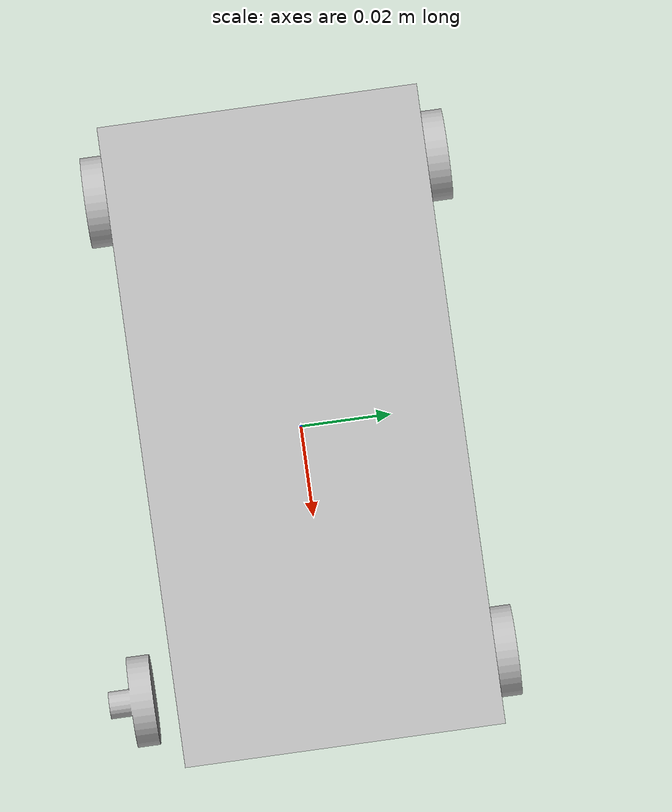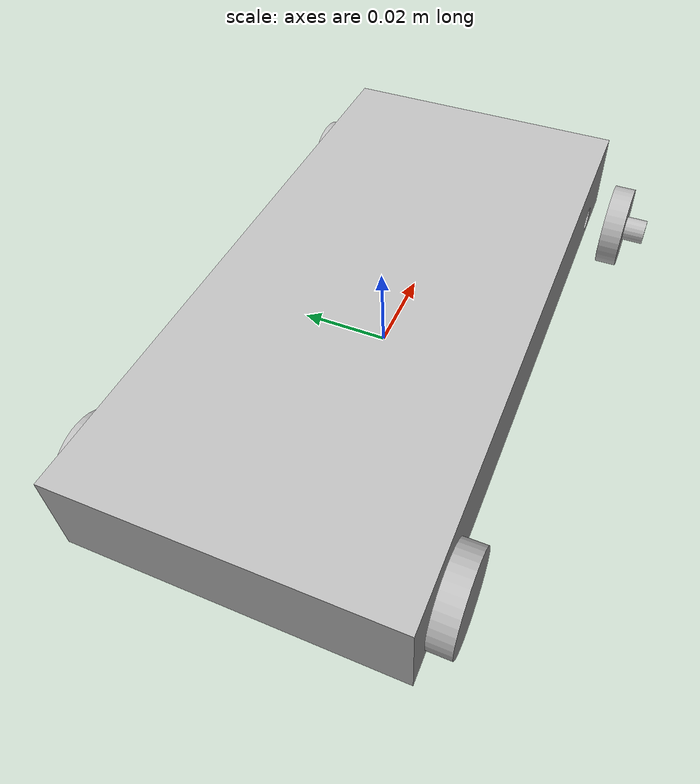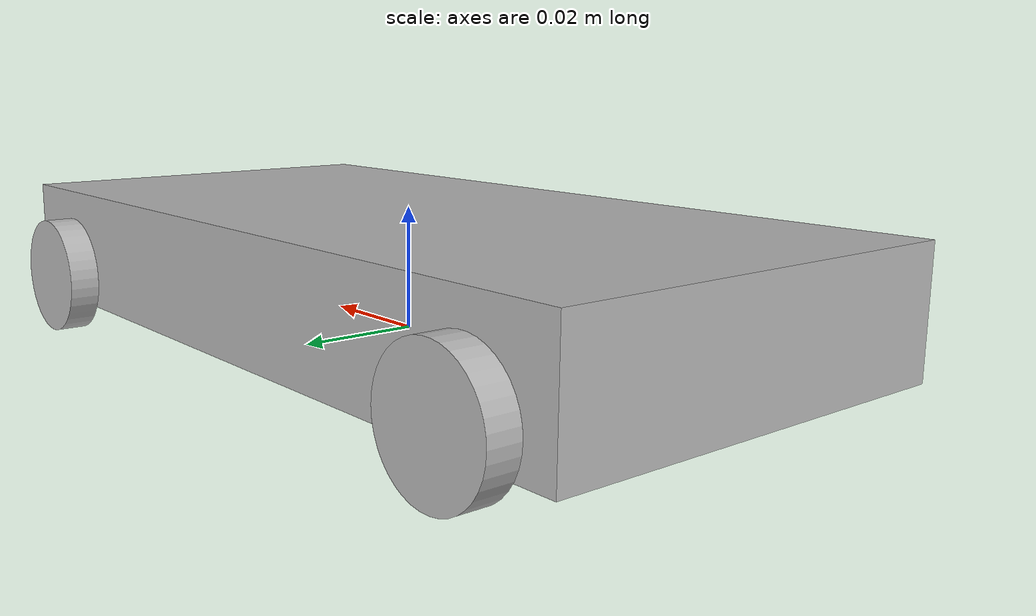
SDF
<sdf version='1.6'>
  <model name='simple_car'>
    <link name='base_link'>
      <pose frame=''>0 0 0 0 -0 0</pose>
      <inertial>
        <pose frame=''>0 -0 0.010103 0 -0 0</pose>
        <mass>0.19204</mass>
        <inertia>
          <ixx>8.484e-05</ixx>
          <ixy>1.781e-20</ixy>
          <ixz>-5.8812e-21</ixz>
          <iyy>0.00031457</iyy>
          <iyz>-7.5483e-19</iyz>
          <izz>0.00038657</izz>
        </inertia>
      </inertial>
      <collision name='base_link_collision'>
        <pose frame=''>0 0 0 0 -0 0</pose>
        <geometry>
          <mesh>
            <scale>1 1 1</scale>
            <uri>model://simple_car/meshes/base_link.STL</uri>
          </mesh>
        </geometry>
      </collision>
      <visual name='base_link_visual'>
        <pose frame=''>0 0 0 0 -0 0</pose>
        <geometry>
          <mesh>
            <scale>1 1 1</scale>
            <uri>model://simple_car/meshes/base_link.STL</uri>
          </mesh>
        </geometry>
      </visual>
    </link>
    <link name='left_front_wheel'>
      <pose frame=''>0.055 0.04 0.005 -1.5708 0 0</pose>
      <inertial>
        <pose frame=''>-0 -0 -0.002913 0 -0 0</pose>
        <mass>0.0017122</mass>
        <inertia>
          <ixx>4.6397e-08</ixx>
          <ixy>7.122e-26</ixy>
          <ixz>-5.1078e-24</ixz>
          <iyy>4.6397e-08</iyy>
          <iyz>5.7964e-25</iyz>
          <izz>7.9176e-08</izz>
        </inertia>
      </inertial>
      <collision name='left_front_wheel_collision'>
        <pose frame=''>0 0 0 0 -0 0</pose>
        <geometry>
          <mesh>
            <scale>1 1 1</scale>
            <uri>model://simple_car/meshes/left_front_wheel.STL</uri>
          </mesh>
        </geometry>
      </collision>
      <visual name='left_front_wheel_visual'>
        <pose frame=''>0 0 0 0 -0 0</pose>
        <geometry>
          <mesh>
            <scale>1 1 1</scale>
            <uri>model://simple_car/meshes/left_front_wheel.STL</uri>
          </mesh>
        </geometry>
      </visual>
    </link>
    <joint name='left_front_joint' type='revolute'>
      <child>left_front_wheel</child>
      <parent>base_link</parent>
      <axis>
        <xyz>0 1 -4e-06</xyz>
        <limit>
          <lower>-1e+16</lower>
          <upper>1e+16</upper>
        </limit>
        <dynamics>
          <spring_reference>0</spring_reference>
          <spring_stiffness>0</spring_stiffness>
        </dynamics>
        <use_parent_model_frame>1</use_parent_model_frame>
      </axis>
    </joint>
    <link name='left_rear_wheel'>
      <pose frame=''>-0.055 0.04 0.005 -1.5708 0 0</pose>
      <inertial>
        <pose frame=''>0 0 -0.002913 0 -0 0</pose>
        <mass>0.0017122</mass>
        <inertia>
          <ixx>4.6397e-08</ixx>
          <ixy>-1.4364e-38</ixy>
          <ixz>-1.1502e-24</ixz>
          <iyy>4.6397e-08</iyy>
          <iyz>-4.2867e-25</iyz>
          <izz>7.9176e-08</izz>
        </inertia>
      </inertial>
      <collision name='left_rear_wheel_collision'>
        <pose frame=''>0 0 0 0 -0 0</pose>
        <geometry>
          <mesh>
            <scale>1 1 1</scale>
            <uri>model://simple_car/meshes/left_rear_wheel.STL</uri>
          </mesh>
        </geometry>
      </collision>
      <visual name='left_rear_wheel_visual'>
        <pose frame=''>0 0 0 0 -0 0</pose>
        <geometry>
          <mesh>
            <scale>1 1 1</scale>
            <uri>model://simple_car/meshes/left_rear_wheel.STL</uri>
          </mesh>
        </geometry>
      </visual>
    </link>
    <joint name='left_rear_joint' type='revolute'>
      <child>left_rear_wheel</child>
      <parent>base_link</parent>
      <axis>
        <xyz>0 1 -4e-06</xyz>
        <limit>
          <lower>-1e+16</lower>
          <upper>1e+16</upper>
        </limit>
        <dynamics>
          <spring_reference>0</spring_reference>
          <spring_stiffness>0</spring_stiffness>
        </dynamics>
        <use_parent_model_frame>1</use_parent_model_frame>
      </axis>
    </joint>
    <link name='right_front_wheel'>
      <pose frame=''>0.055 -0.04 0.005 -1.5708 0 0</pose>
      <inertial>
        <pose frame=''>0 0 0.002913 0 -0 0</pose>
        <mass>0.0017122</mass>
        <inertia>
          <ixx>4.6397e-08</ixx>
          <ixy>-1.3109e-38</ixy>
          <ixz>-1.0445e-24</ixz>
          <iyy>4.6397e-08</iyy>
          <iyz>-4.6261e-25</iyz>
          <izz>7.9176e-08</izz>
        </inertia>
      </inertial>
      <collision name='right_front_wheel_collision'>
        <pose frame=''>0 0 0 0 -0 0</pose>
        <geometry>
          <mesh>
            <scale>1 1 1</scale>
            <uri>model://simple_car/meshes/right_front_wheel.STL</uri>
          </mesh>
        </geometry>
      </collision>
      <visual name='right_front_wheel_visual'>
        <pose frame=''>0 0 0 0 -0 0</pose>
        <geometry>
          <mesh>
            <scale>1 1 1</scale>
            <uri>model://simple_car/meshes/right_front_wheel.STL</uri>
          </mesh>
        </geometry>
      </visual>
    </link>
    <joint name='right_front_joint' type='revolute'>
      <child>right_front_wheel</child>
      <parent>base_link</parent>
      <axis>
        <xyz>0 1 -4e-06</xyz>
        <limit>
          <lower>-1e+16</lower>
          <upper>1e+16</upper>
        </limit>
        <dynamics>
          <spring_reference>0</spring_reference>
          <spring_stiffness>0</spring_stiffness>
        </dynamics>
        <use_parent_model_frame>1</use_parent_model_frame>
      </axis>
    </joint>
    <link name='right_rear_wheel'>
      <pose frame=''>-0.055 -0.04 0.005 -1.5708 0 0</pose>
      <inertial>
        <pose frame=''>-0 0 0.002913 0 -0 0</pose>
        <mass>0.0017122</mass>
        <inertia>
          <ixx>4.6397e-08</ixx>
          <ixy>1.4275e-38</ixy>
          <ixz>1.1654e-24</ixz>
          <iyy>4.6397e-08</iyy>
          <iyz>-4.6261e-25</iyz>
          <izz>7.9176e-08</izz>
        </inertia>
      </inertial>
      <collision name='right_rear_wheel_collision'>
        <pose frame=''>0 0 0 0 -0 0</pose>
        <geometry>
          <mesh>
            <scale>1 1 1</scale>
            <uri>model://simple_car/meshes/right_rear_wheel.STL</uri>
          </mesh>
        </geometry>
      </collision>
      <visual name='right_rear_wheel_visual'>
        <pose frame=''>0 0 0 0 -0 0</pose>
        <geometry>
          <mesh>
            <scale>1 1 1</scale>
            <uri>model://simple_car/meshes/right_rear_wheel.STL</uri>
          </mesh>
        </geometry>
      </visual>
    </link>
    <joint name='right_rear_joint' type='revolute'>
      <child>right_rear_wheel</child>
      <parent>base_link</parent>
      <axis>
        <xyz>0 1 -4e-06</xyz>
        <limit>
          <lower>-1e+16</lower>
          <upper>1e+16</upper>
        </limit>
        <dynamics>
          <spring_reference>0</spring_reference>
          <spring_stiffness>0</spring_stiffness>
        </dynamics>
        <use_parent_model_frame>1</use_parent_model_frame>
      </axis>
    </joint>
  </model>
</sdf>
